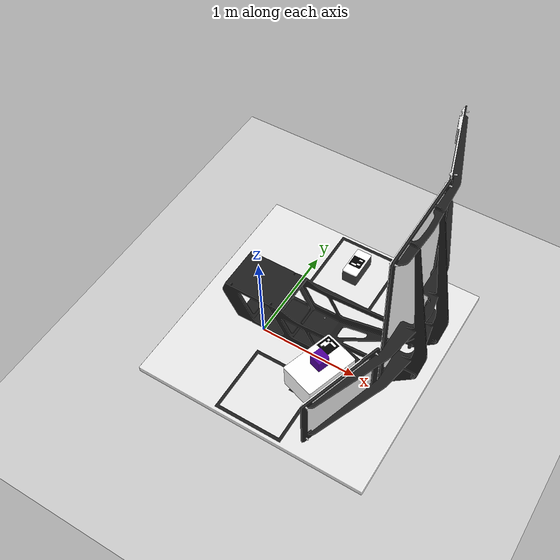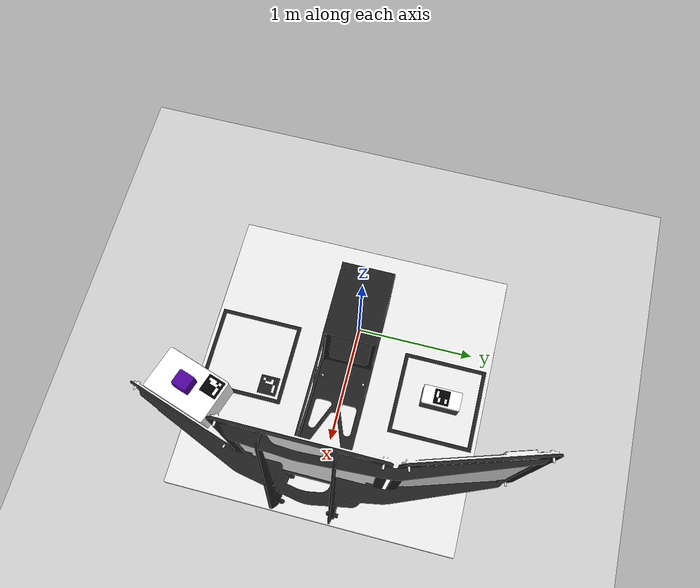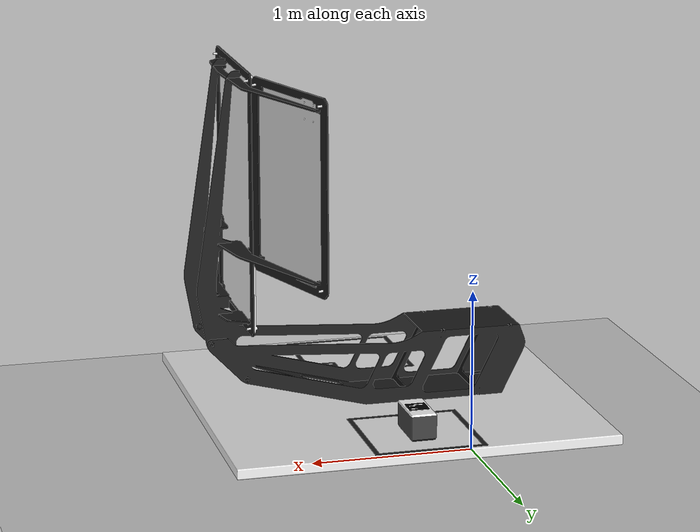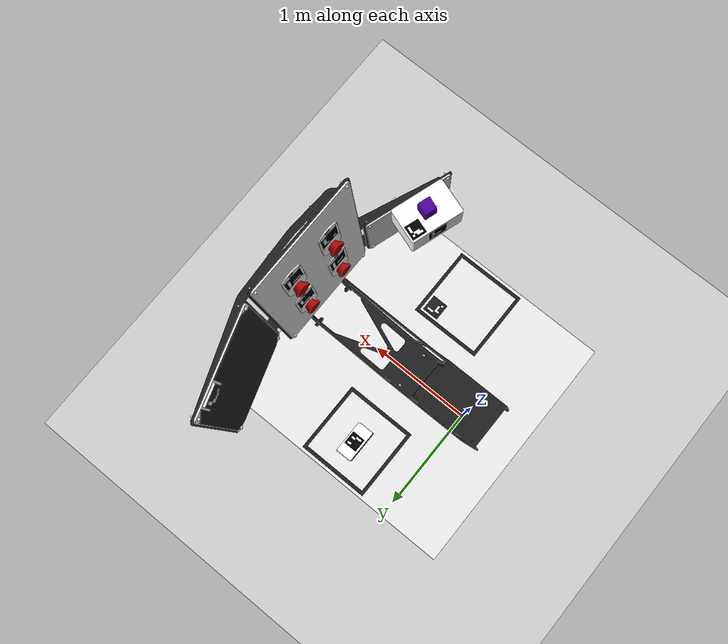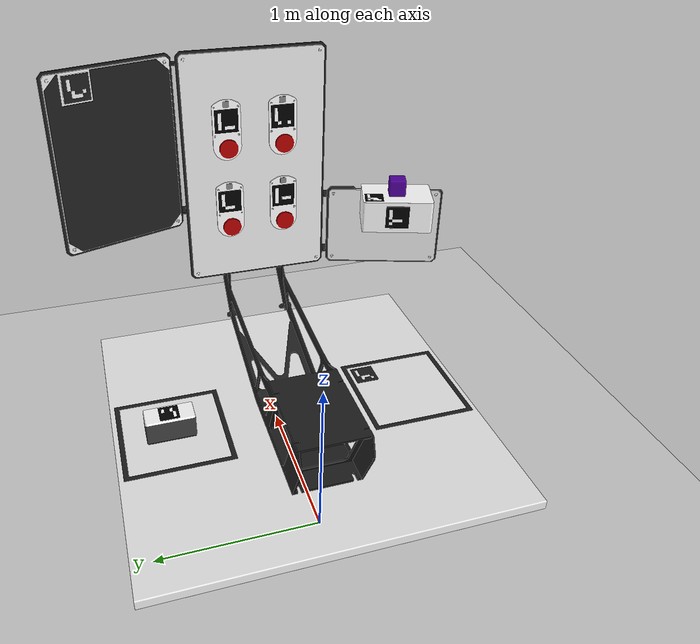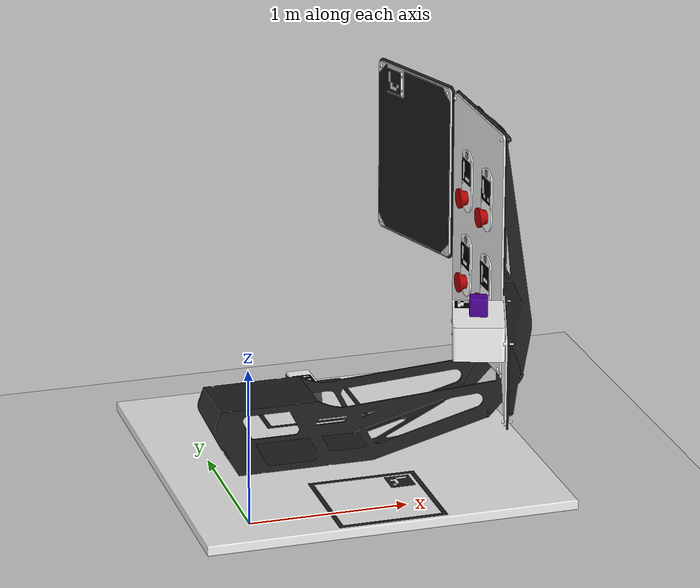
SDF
<sdf version="1.7">
 <world name="default">
  <light name="sun" type="directional">
   <pose>0 0 10 0 -0 0</pose>
   <diffuse>0.8 0.8 0.8 1</diffuse>
   <specular>0.2 0.2 0.2 1</specular>
   <attenuation>
    <range>1000</range>
    <constant>0.9</constant>
    <linear>0.01</linear>
    <quadratic>0.001</quadratic>
   </attenuation>
   <direction>-0.5 0.1 -0.9</direction>
   <spot><inner_angle>0</inner_angle><outer_angle>0</outer_angle><falloff>0</falloff></spot>
  </light>
  <model name="ground_plane">
   <static>1</static>
   <link name="link">
    <collision name="collision">
     <geometry><plane><normal>0 0 1</normal><size>100 100</size></plane></geometry>
     <surface>
      <contact><collide_bitmask>65535</collide_bitmask></contact>
      <friction><ode><mu>100</mu><mu2>50</mu2></ode></friction>
     </surface>
    </collision>
    <visual name="visual">
     <cast_shadows>0</cast_shadows>
     <geometry><plane><normal>0 0 1</normal><size>100 100</size></plane></geometry>
     <material>
      <script><uri>file://media/materials/scripts/gazebo.material</uri><name>Gazebo/Grey</name></script>
     </material>
    </visual>
   </link>
  </model>
  <gravity>0 0 -9.8</gravity>
  <magnetic_field>6e-06 2.3e-05 -4.2e-05</magnetic_field>
  <atmosphere type="adiabatic"/>
  <physics type="ode">
   <max_step_size>0.001</max_step_size>
   <real_time_factor>1</real_time_factor>
   <real_time_update_rate>1000</real_time_update_rate>
  </physics>
  <scene><ambient>0.4 0.4 0.4 1</ambient><background>0.7 0.7 0.7 1</background><shadows>1</shadows></scene>
  <spherical_coordinates>
   <surface_model>EARTH_WGS84</surface_model>
   <latitude_deg>0</latitude_deg>
   <longitude_deg>0</longitude_deg>
   <elevation>0</elevation>
   <heading_deg>0</heading_deg>
  </spherical_coordinates>
  <model name="panel">
   <joint name="cela_black_joint" type="fixed">
    <pose relative_to="__model__">-0.12 0 0.42 0 0 -1.5708</pose>
    <parent>world</parent>
    <child>cela_black</child>
   </joint>
   <link name="cela_black">
    <pose relative_to="cela_black_joint">0 0 0 0 -0 0</pose>
    <inertial>
     <mass>10</mass>
     <inertia><ixx>1</ixx><ixy>0</ixy><ixz>0</ixz><iyy>1</iyy><iyz>0</iyz><izz>1</izz></inertia>
    </inertial>
    <collision name="cela_black_collision">
     <geometry>
      <mesh>
       <scale>0.003 0.003 0.003</scale>
       <uri>/home/abdelrahman/Desktop/GP_ROAR_WS/src/Robotic-Manipulator-Simulation/maintenance_task_simulation/meshes/cell/ERC2022_cela_black.dae</uri>
      </mesh>
     </geometry>
    </collision>
    <visual name="cela_black_visual">
     <geometry>
      <mesh>
       <scale>0.003 0.003 0.003</scale>
       <uri>/home/abdelrahman/Desktop/GP_ROAR_WS/src/Robotic-Manipulator-Simulation/maintenance_task_simulation/meshes/cell/ERC2022_cela_black.dae</uri>
      </mesh>
     </geometry>
     <material>
      <script><name>Gazebo/Black</name><uri>file://media/materials/scripts/gazebo.material</uri></script>
     </material>
    </visual>
   </link>
   <joint name="cela_white_joint" type="fixed">
    <pose relative_to="__model__">-0.12 0 0.42 0 0 -1.5708</pose>
    <parent>world</parent>
    <child>cela_white</child>
   </joint>
   <link name="cela_white">
    <pose relative_to="cela_white_joint">0 0 0 0 -0 0</pose>
    <inertial>
     <mass>10</mass>
     <inertia><ixx>1</ixx><ixy>0</ixy><ixz>0</ixz><iyy>1</iyy><iyz>0</iyz><izz>1</izz></inertia>
    </inertial>
    <collision name="cela_white_collision">
     <geometry>
      <mesh>
       <scale>0.003 0.003 0.003</scale>
       <uri>/home/abdelrahman/Desktop/GP_ROAR_WS/src/Robotic-Manipulator-Simulation/maintenance_task_simulation/meshes/cell/ERC2022_cela_white.dae</uri>
      </mesh>
     </geometry>
    </collision>
    <visual name="cela_white_visual">
     <geometry>
      <mesh>
       <scale>0.003 0.003 0.003</scale>
       <uri>/home/abdelrahman/Desktop/GP_ROAR_WS/src/Robotic-Manipulator-Simulation/maintenance_task_simulation/meshes/cell/ERC2022_cela_white.dae</uri>
      </mesh>
     </geometry>
     <material>
      <script><name>Gazebo/White</name><uri>file://media/materials/scripts/gazebo.material</uri></script>
     </material>
    </visual>
   </link>
   <joint name="world_joint" type="fixed">
    <pose relative_to="__model__">0 0 0.84 0 -0 0</pose>
    <parent>world</parent>
    <child>base_link</child>
   </joint>
   <link name="base_link">
    <pose relative_to="world_joint">0 0 0 0 -0 0</pose>
    <inertial>
     <pose>1.22623 -0.137143 0.542143 0 -0 0</pose>
     <mass>70</mass>
     <inertia>
      <ixx>41.2714</ixx>
      <ixy>3.70173</ixy>
      <ixz>-7.82229</ixz>
      <iyy>26.1862</iyy>
      <iyz>6.36043</iyz>
      <izz>34.3177</izz>
     </inertia>
    </inertial>
    <collision name="base_link_fixed_joint_lump__box_bottom_collision">
     <pose>1.1448 -0.87 0.51 0 0 -1.88496</pose>
     <geometry>
      <mesh>
       <scale>0.003 0.003 0.003</scale>
       <uri>/home/abdelrahman/Desktop/GP_ROAR_WS/src/Robotic-Manipulator-Simulation/maintenance_task_simulation/meshes/box/ERC2022_box_bottom.dae</uri>
      </mesh>
     </geometry>
    </collision>
    <collision name="base_link_fixed_joint_lump__box_top_collision_1">
     <pose>1.1448 -0.87 0.51 0 0 -1.88496</pose>
     <geometry>
      <mesh>
       <scale>0.003 0.003 0.003</scale>
       <uri>/home/abdelrahman/Desktop/GP_ROAR_WS/src/Robotic-Manipulator-Simulation/maintenance_task_simulation/meshes/box/ERC2022_box_top.dae</uri>
      </mesh>
     </geometry>
    </collision>
    <collision name="base_link_fixed_joint_lump__button1_collision_2">
     <pose>1.431 0.18 1.05 1.5707 -0 -1.5707</pose>
     <geometry>
      <mesh>
       <scale>0.003 0.003 0.003</scale>
       <uri>/home/abdelrahman/Desktop/GP_ROAR_WS/src/Robotic-Manipulator-Simulation/maintenance_task_simulation/meshes/button/ERC2022_button_ID1.dae</uri>
      </mesh>
     </geometry>
    </collision>
    <collision name="base_link_fixed_joint_lump__button2_collision_3">
     <pose>1.431 -0.18 1.05 1.5707 -0 -1.5707</pose>
     <geometry>
      <mesh>
       <scale>0.003 0.003 0.003</scale>
       <uri>/home/abdelrahman/Desktop/GP_ROAR_WS/src/Robotic-Manipulator-Simulation/maintenance_task_simulation/meshes/button/ERC2022_button_ID2.dae</uri>
      </mesh>
     </geometry>
    </collision>
    <collision name="base_link_fixed_joint_lump__button3_collision_4">
     <pose>1.431 0.18 0.51 1.5707 -0 -1.5707</pose>
     <geometry>
      <mesh>
       <scale>0.003 0.003 0.003</scale>
       <uri>/home/abdelrahman/Desktop/GP_ROAR_WS/src/Robotic-Manipulator-Simulation/maintenance_task_simulation/meshes/button/ERC2022_button_ID3.dae</uri>
      </mesh>
     </geometry>
    </collision>
    <collision name="base_link_fixed_joint_lump__button4_collision_5">
     <pose>1.431 -0.18 0.51 1.5707 -0 -1.5707</pose>
     <geometry>
      <mesh>
       <scale>0.003 0.003 0.003</scale>
       <uri>/home/abdelrahman/Desktop/GP_ROAR_WS/src/Robotic-Manipulator-Simulation/maintenance_task_simulation/meshes/button/ERC2022_button_ID4.dae</uri>
      </mesh>
     </geometry>
    </collision>
    <collision name="base_link_fixed_joint_lump__imu_collision_6">
     <pose>0.57 0.779997 -0.42 -0.000139 4.6e-05 1.57084</pose>
     <geometry>
      <mesh>
       <scale>0.003 0.003 0.003</scale>
       <uri>/home/abdelrahman/Desktop/GP_ROAR_WS/src/Robotic-Manipulator-Simulation/maintenance_task_simulation/meshes/imu/ERC2022_IMU.dae</uri>
      </mesh>
     </geometry>
    </collision>
    <visual name="base_link_fixed_joint_lump__box_bottom_visual">
     <pose>1.1448 -0.87 0.51 0 0 -1.88496</pose>
     <geometry>
      <mesh>
       <scale>0.003 0.003 0.003</scale>
       <uri>/home/abdelrahman/Desktop/GP_ROAR_WS/src/Robotic-Manipulator-Simulation/maintenance_task_simulation/meshes/box/ERC2022_box_bottom.dae</uri>
      </mesh>
     </geometry>
    </visual>
    <visual name="base_link_fixed_joint_lump__box_top_visual_1">
     <pose>1.1448 -0.87 0.51 0 0 -1.88496</pose>
     <geometry>
      <mesh>
       <scale>0.003 0.003 0.003</scale>
       <uri>/home/abdelrahman/Desktop/GP_ROAR_WS/src/Robotic-Manipulator-Simulation/maintenance_task_simulation/meshes/box/ERC2022_box_top.dae</uri>
      </mesh>
     </geometry>
    </visual>
    <visual name="base_link_fixed_joint_lump__button1_visual_2">
     <pose>1.431 0.18 1.05 1.5707 -0 -1.5707</pose>
     <geometry>
      <mesh>
       <scale>0.003 0.003 0.003</scale>
       <uri>/home/abdelrahman/Desktop/GP_ROAR_WS/src/Robotic-Manipulator-Simulation/maintenance_task_simulation/meshes/button/ERC2022_button_ID1.dae</uri>
      </mesh>
     </geometry>
    </visual>
    <visual name="base_link_fixed_joint_lump__button2_visual_3">
     <pose>1.431 -0.18 1.05 1.5707 -0 -1.5707</pose>
     <geometry>
      <mesh>
       <scale>0.003 0.003 0.003</scale>
       <uri>/home/abdelrahman/Desktop/GP_ROAR_WS/src/Robotic-Manipulator-Simulation/maintenance_task_simulation/meshes/button/ERC2022_button_ID2.dae</uri>
      </mesh>
     </geometry>
    </visual>
    <visual name="base_link_fixed_joint_lump__button3_visual_4">
     <pose>1.431 0.18 0.51 1.5707 -0 -1.5707</pose>
     <geometry>
      <mesh>
       <scale>0.003 0.003 0.003</scale>
       <uri>/home/abdelrahman/Desktop/GP_ROAR_WS/src/Robotic-Manipulator-Simulation/maintenance_task_simulation/meshes/button/ERC2022_button_ID3.dae</uri>
      </mesh>
     </geometry>
    </visual>
    <visual name="base_link_fixed_joint_lump__button4_visual_5">
     <pose>1.431 -0.18 0.51 1.5707 -0 -1.5707</pose>
     <geometry>
      <mesh>
       <scale>0.003 0.003 0.003</scale>
       <uri>/home/abdelrahman/Desktop/GP_ROAR_WS/src/Robotic-Manipulator-Simulation/maintenance_task_simulation/meshes/button/ERC2022_button_ID4.dae</uri>
      </mesh>
     </geometry>
    </visual>
    <visual name="base_link_fixed_joint_lump__imu_visual_6">
     <pose>0.57 0.779997 -0.42 -0.000139 4.6e-05 1.57084</pose>
     <geometry>
      <mesh>
       <scale>0.003 0.003 0.003</scale>
       <uri>/home/abdelrahman/Desktop/GP_ROAR_WS/src/Robotic-Manipulator-Simulation/maintenance_task_simulation/meshes/imu/ERC2022_IMU.dae</uri>
      </mesh>
     </geometry>
    </visual>
   </link>
  </model>
 </world>
</sdf>
